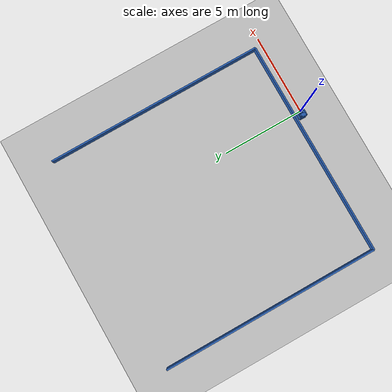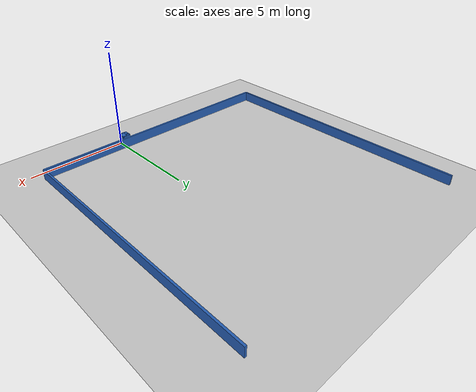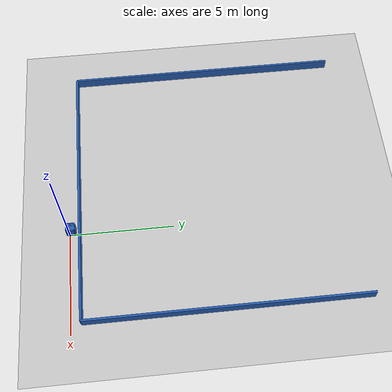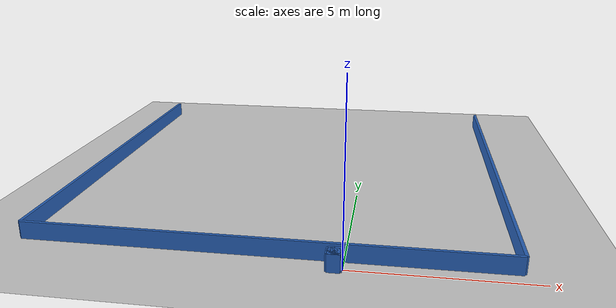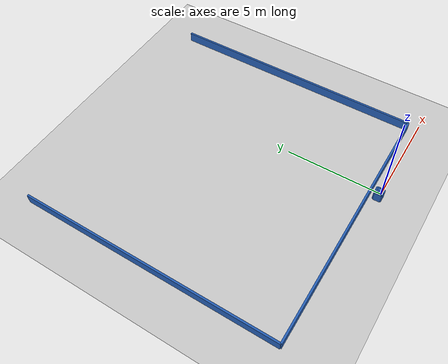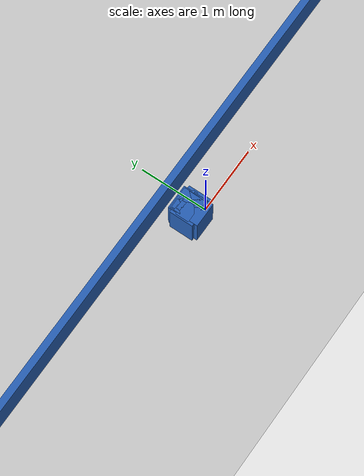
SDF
<?xml version="1.0" ?>
    <sdf version="1.5">
      <world name="default">
        <!-- A global light source -->
        <include>
          <uri>model://sun</uri>
        </include>
        <!-- A ground plane -->
        <include>
          <uri>model://ground_plane</uri>
        </include>

    <model name='libopen_space_final_T2B_51_63'>
      <static>1</static>
      <pose frame=''>-0.225000 0.075000 0.000000 0.000000 0.000000 0.000000</pose>
      <link name='link'>
        <inertial>
          <mass>1</mass>
          <inertia>
            <ixx>0.145833</ixx>
            <ixy>0</ixy>
            <ixz>0</ixz>
            <iyy>0.145833</iyy>
            <iyz>0</iyz>
            <izz>0.125</izz>
          </inertia>
        </inertial>
        <collision name='collision'>
          <geometry>
            <box>
              <size>0.12 0.25 1</size>
            </box>
          </geometry>
          <max_contacts>10</max_contacts>
          <surface>
            <contact>
              <ode/>
            </contact>
            <bounce/>
            <friction>
              <torsional>
                <ode/>
              </torsional>
              <ode/>
            </friction>
          </surface>
        </collision>
        <visual name='visual'>
          <geometry>
            <box>
              <size>0.12 0.25 1</size>
            </box>
          </geometry>
	    <material>
              <ambient>0.152000 0.379000 0.720000 1</ambient>
	      <diffuse>0.152000 0.379000 0.720000 1</diffuse>
          </material>
          <material>
            <script>
              <name>Gazebo/Grey</name>
              <uri>file://media/materials/scripts/gazebo.material</uri>
            </script>
          </material>
        </visual>
        <self_collide>0</self_collide>
        <kinematic>0</kinematic>
        <gravity>1</gravity>
      </link>
      <plugin name='libopen_space_final_T2B_51_63' filename='libopen_space_final_T2B_51_63.so'/>
    </model>

    <model name='libopen_space_final_T2B_96_0'>
      <static>1</static>
      <pose frame=''>-0.225000 0.075000 0.000000 0.000000 0.000000 0.000000</pose>
      <link name='link'>
        <inertial>
          <mass>1</mass>
          <inertia>
            <ixx>0.145833</ixx>
            <ixy>0</ixy>
            <ixz>0</ixz>
            <iyy>0.145833</iyy>
            <iyz>0</iyz>
            <izz>0.125</izz>
          </inertia>
        </inertial>
        <collision name='collision'>
          <geometry>
            <box>
              <size>0.32 0.27 1</size>
            </box>
          </geometry>
          <max_contacts>10</max_contacts>
          <surface>
            <contact>
              <ode/>
            </contact>
            <bounce/>
            <friction>
              <torsional>
                <ode/>
              </torsional>
              <ode/>
            </friction>
          </surface>
        </collision>
        <visual name='visual'>
          <geometry>
            <box>
              <size>0.32 0.27 1</size>
            </box>
          </geometry>
	    <material>
              <ambient>0.152000 0.379000 0.720000 1</ambient>
	      <diffuse>0.152000 0.379000 0.720000 1</diffuse>
          </material>
          <material>
            <script>
              <name>Gazebo/Grey</name>
              <uri>file://media/materials/scripts/gazebo.material</uri>
            </script>
          </material>
        </visual>
        <self_collide>0</self_collide>
        <kinematic>0</kinematic>
        <gravity>1</gravity>
      </link>
      <plugin name='libopen_space_final_T2B_96_0' filename='libopen_space_final_T2B_96_0.so'/>
    </model>

    <model name='libopen_space_final_T2B_118_50'>
      <static>1</static>
      <pose frame=''>-0.225000 0.075000 0.000000 0.000000 0.000000 0.000000</pose>
      <link name='link'>
        <inertial>
          <mass>1</mass>
          <inertia>
            <ixx>0.145833</ixx>
            <ixy>0</ixy>
            <ixz>0</ixz>
            <iyy>0.145833</iyy>
            <iyz>0</iyz>
            <izz>0.125</izz>
          </inertia>
        </inertial>
        <collision name='collision'>
          <geometry>
            <box>
              <size>0.40 0.20 1</size>
            </box>
          </geometry>
          <max_contacts>10</max_contacts>
          <surface>
            <contact>
              <ode/>
            </contact>
            <bounce/>
            <friction>
              <torsional>
                <ode/>
              </torsional>
              <ode/>
            </friction>
          </surface>
        </collision>
        <visual name='visual'>
          <geometry>
            <box>
              <size>0.40 0.20 1</size>
            </box>
          </geometry>
	    <material>
              <ambient>0.152000 0.379000 0.720000 1</ambient>
	      <diffuse>0.152000 0.379000 0.720000 1</diffuse>
          </material>
          <material>
            <script>
              <name>Gazebo/Grey</name>
              <uri>file://media/materials/scripts/gazebo.material</uri>
            </script>
          </material>
        </visual>
        <self_collide>0</self_collide>
        <kinematic>0</kinematic>
        <gravity>1</gravity>
      </link>
      <plugin name='libopen_space_final_T2B_118_50' filename='libopen_space_final_T2B_118_50.so'/>
    </model>

    <model name='libopen_space_final_T2B_145_37'>
      <static>1</static>
      <pose frame=''>-0.225000 0.075000 0.000000 0.000000 0.000000 0.000000</pose>
      <link name='link'>
        <inertial>
          <mass>1</mass>
          <inertia>
            <ixx>0.145833</ixx>
            <ixy>0</ixy>
            <ixz>0</ixz>
            <iyy>0.145833</iyy>
            <iyz>0</iyz>
            <izz>0.125</izz>
          </inertia>
        </inertial>
        <collision name='collision'>
          <geometry>
            <box>
              <size>0.36 0.45 1</size>
            </box>
          </geometry>
          <max_contacts>10</max_contacts>
          <surface>
            <contact>
              <ode/>
            </contact>
            <bounce/>
            <friction>
              <torsional>
                <ode/>
              </torsional>
              <ode/>
            </friction>
          </surface>
        </collision>
        <visual name='visual'>
          <geometry>
            <box>
              <size>0.36 0.45 1</size>
            </box>
          </geometry>
	    <material>
              <ambient>0.152000 0.379000 0.720000 1</ambient>
	      <diffuse>0.152000 0.379000 0.720000 1</diffuse>
          </material>
          <material>
            <script>
              <name>Gazebo/Grey</name>
              <uri>file://media/materials/scripts/gazebo.material</uri>
            </script>
          </material>
        </visual>
        <self_collide>0</self_collide>
        <kinematic>0</kinematic>
        <gravity>1</gravity>
      </link>
      <plugin name='libopen_space_final_T2B_145_37' filename='libopen_space_final_T2B_145_37.so'/>
    </model>

    <model name='libopen_space_final_T2B_77_65'>
      <static>1</static>
      <pose frame=''>-0.225000 0.075000 0.000000 0.000000 0.000000 0.000000</pose>
      <link name='link'>
        <inertial>
          <mass>1</mass>
          <inertia>
            <ixx>0.145833</ixx>
            <ixy>0</ixy>
            <ixz>0</ixz>
            <iyy>0.145833</iyy>
            <iyz>0</iyz>
            <izz>0.125</izz>
          </inertia>
        </inertial>
        <collision name='collision'>
          <geometry>
            <box>
              <size>0.32 0.30 1</size>
            </box>
          </geometry>
          <max_contacts>10</max_contacts>
          <surface>
            <contact>
              <ode/>
            </contact>
            <bounce/>
            <friction>
              <torsional>
                <ode/>
              </torsional>
              <ode/>
            </friction>
          </surface>
        </collision>
        <visual name='visual'>
          <geometry>
            <box>
              <size>0.32 0.30 1</size>
            </box>
          </geometry>
	    <material>
              <ambient>0.152000 0.379000 0.720000 1</ambient>
	      <diffuse>0.152000 0.379000 0.720000 1</diffuse>
          </material>
          <material>
            <script>
              <name>Gazebo/Grey</name>
              <uri>file://media/materials/scripts/gazebo.material</uri>
            </script>
          </material>
        </visual>
        <self_collide>0</self_collide>
        <kinematic>0</kinematic>
        <gravity>1</gravity>
      </link>
      <plugin name='libopen_space_final_T2B_77_65' filename='libopen_space_final_T2B_77_65.so'/>
    </model>

    <model name='libopen_space_final_T2B_71_69'>
      <static>1</static>
      <pose frame=''>-0.225000 0.075000 0.000000 0.000000 0.000000 0.000000</pose>
      <link name='link'>
        <inertial>
          <mass>1</mass>
          <inertia>
            <ixx>0.145833</ixx>
            <ixy>0</ixy>
            <ixz>0</ixz>
            <iyy>0.145833</iyy>
            <iyz>0</iyz>
            <izz>0.125</izz>
          </inertia>
        </inertial>
        <collision name='collision'>
          <geometry>
            <box>
              <size>0.44 0.35 1</size>
            </box>
          </geometry>
          <max_contacts>10</max_contacts>
          <surface>
            <contact>
              <ode/>
            </contact>
            <bounce/>
            <friction>
              <torsional>
                <ode/>
              </torsional>
              <ode/>
            </friction>
          </surface>
        </collision>
        <visual name='visual'>
          <geometry>
            <box>
              <size>0.44 0.35 1</size>
            </box>
          </geometry>
	    <material>
              <ambient>0.152000 0.379000 0.720000 1</ambient>
	      <diffuse>0.152000 0.379000 0.720000 1</diffuse>
          </material>
          <material>
            <script>
              <name>Gazebo/Grey</name>
              <uri>file://media/materials/scripts/gazebo.material</uri>
            </script>
          </material>
        </visual>
        <self_collide>0</self_collide>
        <kinematic>0</kinematic>
        <gravity>1</gravity>
      </link>
      <plugin name='libopen_space_final_T2B_71_69' filename='libopen_space_final_T2B_71_69.so'/>
    </model>

    <model name='libopen_space_final_T2B_125_59'>
      <static>1</static>
      <pose frame=''>-0.225000 0.075000 0.000000 0.000000 0.000000 0.000000</pose>
      <link name='link'>
        <inertial>
          <mass>1</mass>
          <inertia>
            <ixx>0.145833</ixx>
            <ixy>0</ixy>
            <ixz>0</ixz>
            <iyy>0.145833</iyy>
            <iyz>0</iyz>
            <izz>0.125</izz>
          </inertia>
        </inertial>
        <collision name='collision'>
          <geometry>
            <box>
              <size>0.23 0.34 1</size>
            </box>
          </geometry>
          <max_contacts>10</max_contacts>
          <surface>
            <contact>
              <ode/>
            </contact>
            <bounce/>
            <friction>
              <torsional>
                <ode/>
              </torsional>
              <ode/>
            </friction>
          </surface>
        </collision>
        <visual name='visual'>
          <geometry>
            <box>
              <size>0.23 0.34 1</size>
            </box>
          </geometry>
	    <material>
              <ambient>0.152000 0.379000 0.720000 1</ambient>
	      <diffuse>0.152000 0.379000 0.720000 1</diffuse>
          </material>
          <material>
            <script>
              <name>Gazebo/Grey</name>
              <uri>file://media/materials/scripts/gazebo.material</uri>
            </script>
          </material>
        </visual>
        <self_collide>0</self_collide>
        <kinematic>0</kinematic>
        <gravity>1</gravity>
      </link>
      <plugin name='libopen_space_final_T2B_125_59' filename='libopen_space_final_T2B_125_59.so'/>
    </model>

    <model name='libopen_space_final_T2B_103_35'>
      <static>1</static>
      <pose frame=''>-0.225000 0.075000 0.000000 0.000000 0.000000 0.000000</pose>
      <link name='link'>
        <inertial>
          <mass>1</mass>
          <inertia>
            <ixx>0.145833</ixx>
            <ixy>0</ixy>
            <ixz>0</ixz>
            <iyy>0.145833</iyy>
            <iyz>0</iyz>
            <izz>0.125</izz>
          </inertia>
        </inertial>
        <collision name='collision'>
          <geometry>
            <box>
              <size>0.11 0.25 1</size>
            </box>
          </geometry>
          <max_contacts>10</max_contacts>
          <surface>
            <contact>
              <ode/>
            </contact>
            <bounce/>
            <friction>
              <torsional>
                <ode/>
              </torsional>
              <ode/>
            </friction>
          </surface>
        </collision>
        <visual name='visual'>
          <geometry>
            <box>
              <size>0.11 0.25 1</size>
            </box>
          </geometry>
	    <material>
              <ambient>0.152000 0.379000 0.720000 1</ambient>
	      <diffuse>0.152000 0.379000 0.720000 1</diffuse>
          </material>
          <material>
            <script>
              <name>Gazebo/Grey</name>
              <uri>file://media/materials/scripts/gazebo.material</uri>
            </script>
          </material>
        </visual>
        <self_collide>0</self_collide>
        <kinematic>0</kinematic>
        <gravity>1</gravity>
      </link>
      <plugin name='libopen_space_final_T2B_103_35' filename='libopen_space_final_T2B_103_35.so'/>
    </model>

    <model name='libopen_space_final_T2B_73_9'>
      <static>1</static>
      <pose frame=''>-0.225000 0.075000 0.000000 0.000000 0.000000 0.000000</pose>
      <link name='link'>
        <inertial>
          <mass>1</mass>
          <inertia>
            <ixx>0.145833</ixx>
            <ixy>0</ixy>
            <ixz>0</ixz>
            <iyy>0.145833</iyy>
            <iyz>0</iyz>
            <izz>0.125</izz>
          </inertia>
        </inertial>
        <collision name='collision'>
          <geometry>
            <box>
              <size>0.34 0.29 1</size>
            </box>
          </geometry>
          <max_contacts>10</max_contacts>
          <surface>
            <contact>
              <ode/>
            </contact>
            <bounce/>
            <friction>
              <torsional>
                <ode/>
              </torsional>
              <ode/>
            </friction>
          </surface>
        </collision>
        <visual name='visual'>
          <geometry>
            <box>
              <size>0.34 0.29 1</size>
            </box>
          </geometry>
	    <material>
              <ambient>0.152000 0.379000 0.720000 1</ambient>
	      <diffuse>0.152000 0.379000 0.720000 1</diffuse>
          </material>
          <material>
            <script>
              <name>Gazebo/Grey</name>
              <uri>file://media/materials/scripts/gazebo.material</uri>
            </script>
          </material>
        </visual>
        <self_collide>0</self_collide>
        <kinematic>0</kinematic>
        <gravity>1</gravity>
      </link>
      <plugin name='libopen_space_final_T2B_73_9' filename='libopen_space_final_T2B_73_9.so'/>
    </model>

    <model name='libopen_space_final_T2B_129_92'>
      <static>1</static>
      <pose frame=''>-0.225000 0.075000 0.000000 0.000000 0.000000 0.000000</pose>
      <link name='link'>
        <inertial>
          <mass>1</mass>
          <inertia>
            <ixx>0.145833</ixx>
            <ixy>0</ixy>
            <ixz>0</ixz>
            <iyy>0.145833</iyy>
            <iyz>0</iyz>
            <izz>0.125</izz>
          </inertia>
        </inertial>
        <collision name='collision'>
          <geometry>
            <box>
              <size>0.33 0.35 1</size>
            </box>
          </geometry>
          <max_contacts>10</max_contacts>
          <surface>
            <contact>
              <ode/>
            </contact>
            <bounce/>
            <friction>
              <torsional>
                <ode/>
              </torsional>
              <ode/>
            </friction>
          </surface>
        </collision>
        <visual name='visual'>
          <geometry>
            <box>
              <size>0.33 0.35 1</size>
            </box>
          </geometry>
	    <material>
              <ambient>0.152000 0.379000 0.720000 1</ambient>
	      <diffuse>0.152000 0.379000 0.720000 1</diffuse>
          </material>
          <material>
            <script>
              <name>Gazebo/Grey</name>
              <uri>file://media/materials/scripts/gazebo.material</uri>
            </script>
          </material>
        </visual>
        <self_collide>0</self_collide>
        <kinematic>0</kinematic>
        <gravity>1</gravity>
      </link>
      <plugin name='libopen_space_final_T2B_129_92' filename='libopen_space_final_T2B_129_92.so'/>
    </model>

    <model name='libopen_space_final_T2B_90_76'>
      <static>1</static>
      <pose frame=''>-0.225000 0.075000 0.000000 0.000000 0.000000 0.000000</pose>
      <link name='link'>
        <inertial>
          <mass>1</mass>
          <inertia>
            <ixx>0.145833</ixx>
            <ixy>0</ixy>
            <ixz>0</ixz>
            <iyy>0.145833</iyy>
            <iyz>0</iyz>
            <izz>0.125</izz>
          </inertia>
        </inertial>
        <collision name='collision'>
          <geometry>
            <box>
              <size>0.33 0.42 1</size>
            </box>
          </geometry>
          <max_contacts>10</max_contacts>
          <surface>
            <contact>
              <ode/>
            </contact>
            <bounce/>
            <friction>
              <torsional>
                <ode/>
              </torsional>
              <ode/>
            </friction>
          </surface>
        </collision>
        <visual name='visual'>
          <geometry>
            <box>
              <size>0.33 0.42 1</size>
            </box>
          </geometry>
	    <material>
              <ambient>0.152000 0.379000 0.720000 1</ambient>
	      <diffuse>0.152000 0.379000 0.720000 1</diffuse>
          </material>
          <material>
            <script>
              <name>Gazebo/Grey</name>
              <uri>file://media/materials/scripts/gazebo.material</uri>
            </script>
          </material>
        </visual>
        <self_collide>0</self_collide>
        <kinematic>0</kinematic>
        <gravity>1</gravity>
      </link>
      <plugin name='libopen_space_final_T2B_90_76' filename='libopen_space_final_T2B_90_76.so'/>
    </model>

    <model name='libopen_space_final_T2B_56_75'>
      <static>1</static>
      <pose frame=''>-0.225000 0.075000 0.000000 0.000000 0.000000 0.000000</pose>
      <link name='link'>
        <inertial>
          <mass>1</mass>
          <inertia>
            <ixx>0.145833</ixx>
            <ixy>0</ixy>
            <ixz>0</ixz>
            <iyy>0.145833</iyy>
            <iyz>0</iyz>
            <izz>0.125</izz>
          </inertia>
        </inertial>
        <collision name='collision'>
          <geometry>
            <box>
              <size>0.12 0.37 1</size>
            </box>
          </geometry>
          <max_contacts>10</max_contacts>
          <surface>
            <contact>
              <ode/>
            </contact>
            <bounce/>
            <friction>
              <torsional>
                <ode/>
              </torsional>
              <ode/>
            </friction>
          </surface>
        </collision>
        <visual name='visual'>
          <geometry>
            <box>
              <size>0.12 0.37 1</size>
            </box>
          </geometry>
	    <material>
              <ambient>0.152000 0.379000 0.720000 1</ambient>
	      <diffuse>0.152000 0.379000 0.720000 1</diffuse>
          </material>
          <material>
            <script>
              <name>Gazebo/Grey</name>
              <uri>file://media/materials/scripts/gazebo.material</uri>
            </script>
          </material>
        </visual>
        <self_collide>0</self_collide>
        <kinematic>0</kinematic>
        <gravity>1</gravity>
      </link>
      <plugin name='libopen_space_final_T2B_56_75' filename='libopen_space_final_T2B_56_75.so'/>
    </model>

    <model name='libopen_space_final_T2B_83_66'>
      <static>1</static>
      <pose frame=''>-0.225000 0.075000 0.000000 0.000000 0.000000 0.000000</pose>
      <link name='link'>
        <inertial>
          <mass>1</mass>
          <inertia>
            <ixx>0.145833</ixx>
            <ixy>0</ixy>
            <ixz>0</ixz>
            <iyy>0.145833</iyy>
            <iyz>0</iyz>
            <izz>0.125</izz>
          </inertia>
        </inertial>
        <collision name='collision'>
          <geometry>
            <box>
              <size>0.30 0.39 1</size>
            </box>
          </geometry>
          <max_contacts>10</max_contacts>
          <surface>
            <contact>
              <ode/>
            </contact>
            <bounce/>
            <friction>
              <torsional>
                <ode/>
              </torsional>
              <ode/>
            </friction>
          </surface>
        </collision>
        <visual name='visual'>
          <geometry>
            <box>
              <size>0.30 0.39 1</size>
            </box>
          </geometry>
	    <material>
              <ambient>0.152000 0.379000 0.720000 1</ambient>
	      <diffuse>0.152000 0.379000 0.720000 1</diffuse>
          </material>
          <material>
            <script>
              <name>Gazebo/Grey</name>
              <uri>file://media/materials/scripts/gazebo.material</uri>
            </script>
          </material>
        </visual>
        <self_collide>0</self_collide>
        <kinematic>0</kinematic>
        <gravity>1</gravity>
      </link>
      <plugin name='libopen_space_final_T2B_83_66' filename='libopen_space_final_T2B_83_66.so'/>
    </model>

        <model name='bottom_wall'>
          <static>1</static>
          <pose frame=''>-2.25 0.5 0.000000 0.000000 0.000000 1.57079632</pose>
          <link name='link'>
            <inertial>
            <mass>1</mass>
            <inertia>
              <ixx>0.145833</ixx>
              <ixy>0</ixy>
              <ixz>0</ixz>
              <iyy>0.145833</iyy>
              <iyz>0</iyz>
              <izz>0.125</izz>
            </inertia>
            </inertial>
            <collision name='collision'>
            <geometry>
              <box>
              <size>0.1 13.5 1</size>
              </box>
            </geometry>
            <max_contacts>10</max_contacts>
            <surface>
              <contact>
              <ode/>
              </contact>
              <bounce/>
              <friction>
              <torsional>
                <ode/>
              </torsional>
              <ode/>
              </friction>
            </surface>
            </collision>
            <visual name='visual'>
            <geometry>
              <box>
              <size>0.1 13.5 1</size>
              </box>
            </geometry>
            <material>
              <ambient>0.152000 0.379000 0.720000 1</ambient>
            <diffuse>0.152000 0.379000 0.720000 1</diffuse>
            </material>
            <material>
              <script>
              <name>Gazebo/Grey</name>
              <uri>file://media/materials/scripts/gazebo.material</uri>
              </script>
            </material>
            </visual>
            <self_collide>0</self_collide>
            <kinematic>0</kinematic>
            <gravity>1</gravity>
          </link>
        </model>

        <model name='left_wall'>
          <static>1</static>
          <pose frame=''>-9 7.25 0.000000 0.000000 0.000000 0.000000</pose>
          <link name='link'>
            <inertial>
            <mass>1</mass>
            <inertia>
              <ixx>0.145833</ixx>
              <ixy>0</ixy>
              <ixz>0</ixz>
              <iyy>0.145833</iyy>
              <iyz>0</iyz>
              <izz>0.125</izz>
            </inertia>
            </inertial>
            <collision name='collision'>
            <geometry>
              <box>
              <size>0.1 13.5 1</size>
              </box>
            </geometry>
            <max_contacts>10</max_contacts>
            <surface>
              <contact>
              <ode/>
              </contact>
              <bounce/>
              <friction>
              <torsional>
                <ode/>
              </torsional>
              <ode/>
              </friction>
            </surface>
            </collision>
            <visual name='visual'>
            <geometry>
              <box>
              <size>0.1 13.5 1</size>
              </box>
            </geometry>
            <material>
              <ambient>0.152000 0.379000 0.720000 1</ambient>
            <diffuse>0.152000 0.379000 0.720000 1</diffuse>
            </material>
            <material>
              <script>
              <name>Gazebo/Grey</name>
              <uri>file://media/materials/scripts/gazebo.material</uri>
              </script>
            </material>
            </visual>
            <self_collide>0</self_collide>
            <kinematic>0</kinematic>
            <gravity>1</gravity>
          </link>
        </model>

        <model name='right_wall'>
          <static>1</static>
          <pose frame=''>4.5 7.25 0.000000 0.000000 0.000000 0.000000</pose>
          <link name='link'>
            <inertial>
            <mass>1</mass>
            <inertia>
              <ixx>0.145833</ixx>
              <ixy>0</ixy>
              <ixz>0</ixz>
              <iyy>0.145833</iyy>
              <iyz>0</iyz>
              <izz>0.125</izz>
            </inertia>
            </inertial>
            <collision name='collision'>
            <geometry>
              <box>
              <size>0.1 13.5 1</size>
              </box>
            </geometry>
            <max_contacts>10</max_contacts>
            <surface>
              <contact>
              <ode/>
              </contact>
              <bounce/>
              <friction>
              <torsional>
                <ode/>
              </torsional>
              <ode/>
              </friction>
            </surface>
            </collision>
            <visual name='visual'>
            <geometry>
              <box>
              <size>0.1 13.5 1</size>
              </box>
            </geometry>
            <material>
              <ambient>0.152000 0.379000 0.720000 1</ambient>
            <diffuse>0.152000 0.379000 0.720000 1</diffuse>
            </material>
            <material>
              <script>
              <name>Gazebo/Grey</name>
              <uri>file://media/materials/scripts/gazebo.material</uri>
              </script>
            </material>
            </visual>
            <self_collide>0</self_collide>
            <kinematic>0</kinematic>
            <gravity>1</gravity>
          </link>
        </model>

      </world>
    </sdf>"
